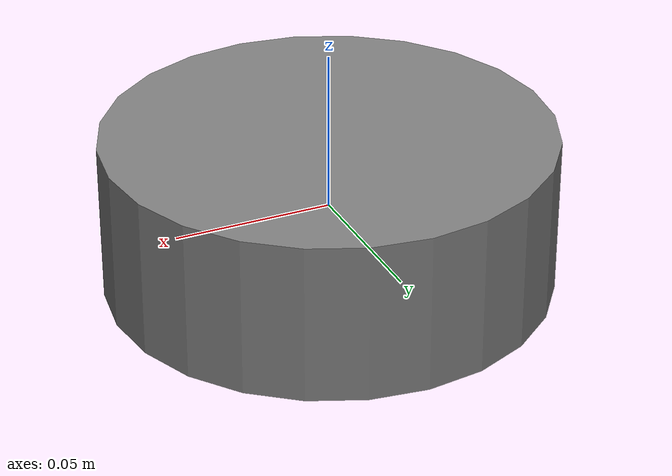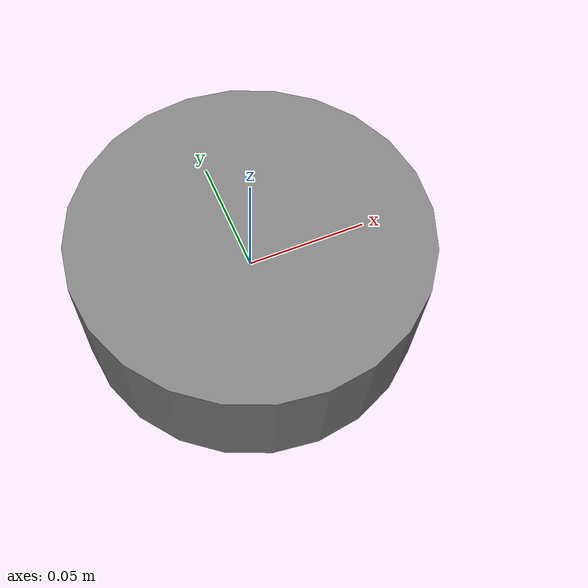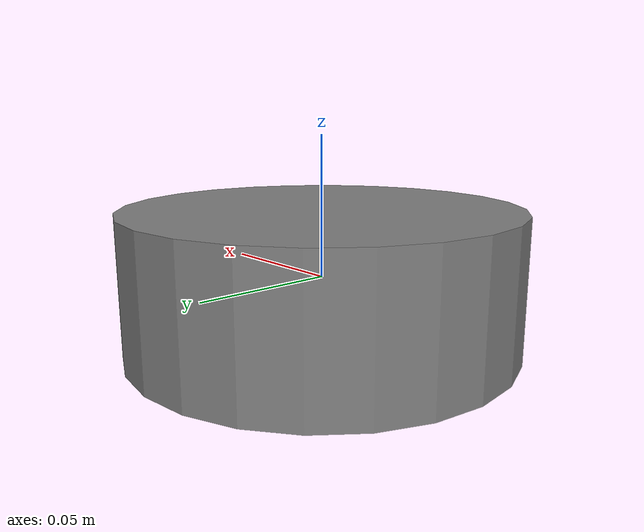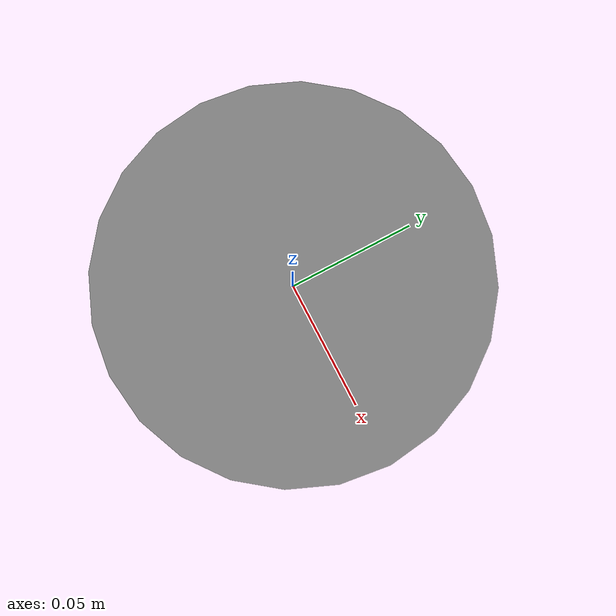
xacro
<?xml version="1.0"?>
<robot xmlns:xacro="http://www.ros.org/wiki/xacro" name="inpipe_base">
  <xacro:include filename="$(find inpipe_description)/urdf/common/macros.xacro"/>

  <!-- Base link: simple cylinder pod -->
  <link name="base_link">
    <xacro:cylinder_inertia mass="0.8" radius="0.07" length="0.05"/>
    <visual>
      <origin xyz="0 0 0" rpy="0 0 0"/>
      <geometry><cylinder radius="0.07" length="0.05"/></geometry>
      <material name="gray"><color rgba="0.5 0.5 0.5 1"/></material>
    </visual>
    <collision>
      <origin xyz="0 0 0" rpy="0 0 0"/>
      <geometry><cylinder radius="0.07" length="0.05"/></geometry>
    </collision>
  </link>
</robot>
